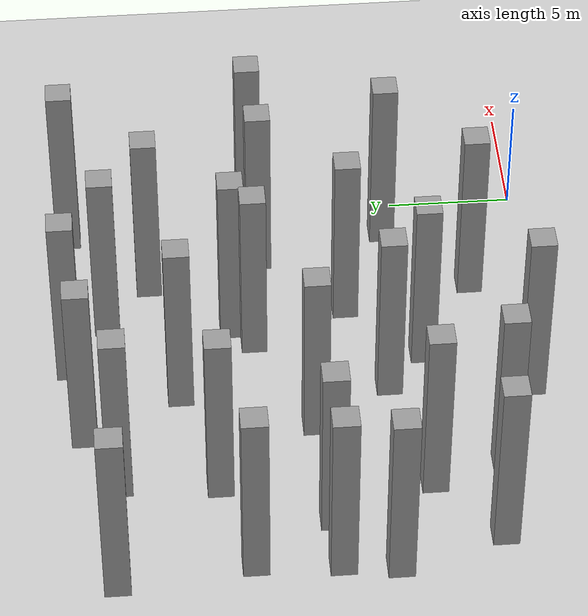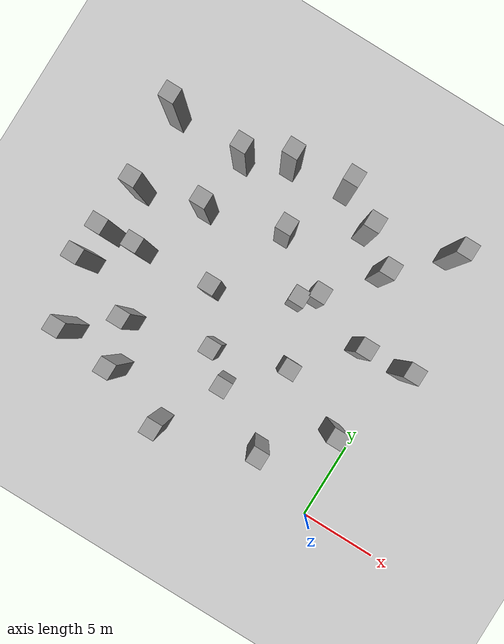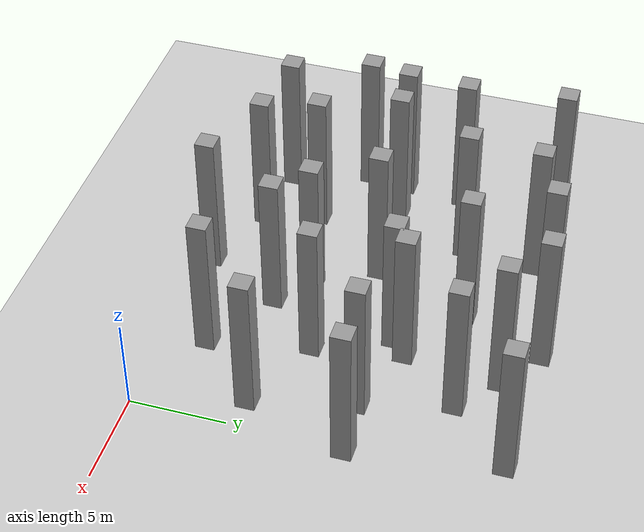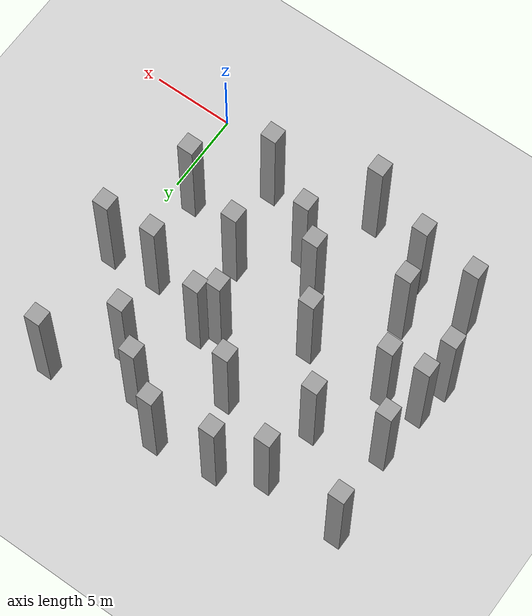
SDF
<sdf version="1.7">
 <world name="default">
  <model name="ground_plane">
   <static>1</static>
   <link name="link">
    <collision name="collision">
     <geometry><plane><normal>0 0 1</normal><size>100 100</size></plane></geometry>
     <surface>
      <contact><collide_bitmask>65535</collide_bitmask></contact>
      <friction><ode><mu>100</mu><mu2>50</mu2></ode></friction>
     </surface>
    </collision>
    <visual name="visual">
     <cast_shadows>0</cast_shadows>
     <geometry><plane><normal>0 0 1</normal><size>100 100</size></plane></geometry>
     <material>
      <script><uri>file://media/materials/scripts/gazebo.material</uri><name>Gazebo/Grey</name></script>
     </material>
    </visual>
   </link>
  </model>
  <model name="unit_box_static20">
   <link name="link">
    <inertial>
     <mass>1</mass>
     <inertia>
      <ixx>0.166667</ixx>
      <ixy>0</ixy>
      <ixz>0</ixz>
      <iyy>0.166667</iyy>
      <iyz>0</iyz>
      <izz>0.166667</izz>
     </inertia>
    </inertial>
    <visual name="visual">
     <geometry><box><size>1 1 8</size></box></geometry>
     <material>
      <script><name>Gazebo/Grey</name><uri>file://media/materials/scripts/gazebo.material</uri></script>
      <shader type="pixel"/>
     </material>
    </visual>
    <collision name="collision">
     <geometry><box><size>1 1 8</size></box></geometry>
     <surface>
      <friction>
       <ode><mu>1</mu><mu2>1</mu2><fdir1>0 0 0</fdir1><slip1>0</slip1><slip2>0</slip2></ode>
       <torsional>
        <coefficient>1</coefficient>
        <patch_radius>0</patch_radius>
        <surface_radius>0</surface_radius>
        <use_patch_radius>1</use_patch_radius>
        <ode><slip>0</slip></ode>
       </torsional>
      </friction>
      <bounce><restitution_coefficient>0</restitution_coefficient><threshold>1e+06</threshold></bounce>
      <contact>
       <collide_without_contact>0</collide_without_contact>
       <collide_without_contact_bitmask>1</collide_without_contact_bitmask>
       <collide_bitmask>1</collide_bitmask>
       <ode>
        <soft_cfm>0</soft_cfm>
        <soft_erp>0.2</soft_erp>
        <kp>1e+13</kp>
        <kd>1</kd>
        <max_vel>0.01</max_vel>
        <min_depth>0</min_depth>
       </ode>
       <bullet>
        <split_impulse>1</split_impulse>
        <split_impulse_penetration_threshold>-0.01</split_impulse_penetration_threshold>
        <soft_cfm>0</soft_cfm>
        <soft_erp>0.2</soft_erp>
        <kp>1e+13</kp>
        <kd>1</kd>
       </bullet>
      </contact>
     </surface>
    </collision>
   </link>
   <static>1</static>
   <pose>-4.92886 2.28168 4 0 -0 0</pose>
  </model>
  <model name="unit_box_static24">
   <link name="link">
    <inertial>
     <mass>1</mass>
     <inertia>
      <ixx>0.166667</ixx>
      <ixy>0</ixy>
      <ixz>0</ixz>
      <iyy>0.166667</iyy>
      <iyz>0</iyz>
      <izz>0.166667</izz>
     </inertia>
    </inertial>
    <visual name="visual">
     <geometry><box><size>1 1 8</size></box></geometry>
     <material>
      <script><name>Gazebo/Grey</name><uri>file://media/materials/scripts/gazebo.material</uri></script>
      <shader type="pixel"/>
     </material>
    </visual>
    <collision name="collision">
     <geometry><box><size>1 1 8</size></box></geometry>
     <surface>
      <friction>
       <ode><mu>1</mu><mu2>1</mu2><fdir1>0 0 0</fdir1><slip1>0</slip1><slip2>0</slip2></ode>
       <torsional>
        <coefficient>1</coefficient>
        <patch_radius>0</patch_radius>
        <surface_radius>0</surface_radius>
        <use_patch_radius>1</use_patch_radius>
        <ode><slip>0</slip></ode>
       </torsional>
      </friction>
      <bounce><restitution_coefficient>0</restitution_coefficient><threshold>1e+06</threshold></bounce>
      <contact>
       <collide_without_contact>0</collide_without_contact>
       <collide_without_contact_bitmask>1</collide_without_contact_bitmask>
       <collide_bitmask>1</collide_bitmask>
       <ode>
        <soft_cfm>0</soft_cfm>
        <soft_erp>0.2</soft_erp>
        <kp>1e+13</kp>
        <kd>1</kd>
        <max_vel>0.01</max_vel>
        <min_depth>0</min_depth>
       </ode>
       <bullet>
        <split_impulse>1</split_impulse>
        <split_impulse_penetration_threshold>-0.01</split_impulse_penetration_threshold>
        <soft_cfm>0</soft_cfm>
        <soft_erp>0.2</soft_erp>
        <kp>1e+13</kp>
        <kd>1</kd>
       </bullet>
      </contact>
     </surface>
    </collision>
   </link>
   <static>1</static>
   <pose>-14.8699 2.03587 4 0 -0 0</pose>
  </model>
  <model name="unit_box_static33">
   <link name="link">
    <inertial>
     <mass>1</mass>
     <inertia>
      <ixx>0.166667</ixx>
      <ixy>0</ixy>
      <ixz>0</ixz>
      <iyy>0.166667</iyy>
      <iyz>0</iyz>
      <izz>0.166667</izz>
     </inertia>
    </inertial>
    <visual name="visual">
     <geometry><box><size>1 1 8</size></box></geometry>
     <material>
      <script><name>Gazebo/Grey</name><uri>file://media/materials/scripts/gazebo.material</uri></script>
      <shader type="pixel"/>
     </material>
    </visual>
    <collision name="collision">
     <geometry><box><size>1 1 8</size></box></geometry>
     <surface>
      <friction>
       <ode><mu>1</mu><mu2>1</mu2><fdir1>0 0 0</fdir1><slip1>0</slip1><slip2>0</slip2></ode>
       <torsional>
        <coefficient>1</coefficient>
        <patch_radius>0</patch_radius>
        <surface_radius>0</surface_radius>
        <use_patch_radius>1</use_patch_radius>
        <ode><slip>0</slip></ode>
       </torsional>
      </friction>
      <bounce><restitution_coefficient>0</restitution_coefficient><threshold>1e+06</threshold></bounce>
      <contact>
       <collide_without_contact>0</collide_without_contact>
       <collide_without_contact_bitmask>1</collide_without_contact_bitmask>
       <collide_bitmask>1</collide_bitmask>
       <ode>
        <soft_cfm>0</soft_cfm>
        <soft_erp>0.2</soft_erp>
        <kp>1e+13</kp>
        <kd>1</kd>
        <max_vel>0.01</max_vel>
        <min_depth>0</min_depth>
       </ode>
       <bullet>
        <split_impulse>1</split_impulse>
        <split_impulse_penetration_threshold>-0.01</split_impulse_penetration_threshold>
        <soft_cfm>0</soft_cfm>
        <soft_erp>0.2</soft_erp>
        <kp>1e+13</kp>
        <kd>1</kd>
       </bullet>
      </contact>
     </surface>
    </collision>
   </link>
   <static>1</static>
   <pose>-6.26787 17.038 4 0 -0 0</pose>
  </model>
  <model name="unit_box_static40">
   <link name="link">
    <inertial>
     <mass>1</mass>
     <inertia>
      <ixx>0.166667</ixx>
      <ixy>0</ixy>
      <ixz>0</ixz>
      <iyy>0.166667</iyy>
      <iyz>0</iyz>
      <izz>0.166667</izz>
     </inertia>
    </inertial>
    <visual name="visual">
     <geometry><box><size>1 1 8</size></box></geometry>
     <material>
      <script><name>Gazebo/Grey</name><uri>file://media/materials/scripts/gazebo.material</uri></script>
      <shader type="pixel"/>
     </material>
    </visual>
    <collision name="collision">
     <geometry><box><size>1 1 8</size></box></geometry>
     <surface>
      <friction>
       <ode><mu>1</mu><mu2>1</mu2><fdir1>0 0 0</fdir1><slip1>0</slip1><slip2>0</slip2></ode>
       <torsional>
        <coefficient>1</coefficient>
        <patch_radius>0</patch_radius>
        <surface_radius>0</surface_radius>
        <use_patch_radius>1</use_patch_radius>
        <ode><slip>0</slip></ode>
       </torsional>
      </friction>
      <bounce><restitution_coefficient>0</restitution_coefficient><threshold>1e+06</threshold></bounce>
      <contact>
       <collide_without_contact>0</collide_without_contact>
       <collide_without_contact_bitmask>1</collide_without_contact_bitmask>
       <collide_bitmask>1</collide_bitmask>
       <ode>
        <soft_cfm>0</soft_cfm>
        <soft_erp>0.2</soft_erp>
        <kp>1e+13</kp>
        <kd>1</kd>
        <max_vel>0.01</max_vel>
        <min_depth>0</min_depth>
       </ode>
       <bullet>
        <split_impulse>1</split_impulse>
        <split_impulse_penetration_threshold>-0.01</split_impulse_penetration_threshold>
        <soft_cfm>0</soft_cfm>
        <soft_erp>0.2</soft_erp>
        <kp>1e+13</kp>
        <kd>1</kd>
       </bullet>
      </contact>
     </surface>
    </collision>
   </link>
   <static>1</static>
   <pose>-12.3332 18.1183 4 0 -0 0</pose>
  </model>
  <model name="unit_box_static48">
   <link name="link">
    <inertial>
     <mass>1</mass>
     <inertia>
      <ixx>0.166667</ixx>
      <ixy>0</ixy>
      <ixz>0</ixz>
      <iyy>0.166667</iyy>
      <iyz>0</iyz>
      <izz>0.166667</izz>
     </inertia>
    </inertial>
    <visual name="visual">
     <geometry><box><size>1 1 8</size></box></geometry>
     <material>
      <script><name>Gazebo/Grey</name><uri>file://media/materials/scripts/gazebo.material</uri></script>
      <shader type="pixel"/>
     </material>
    </visual>
    <collision name="collision">
     <geometry><box><size>1 1 8</size></box></geometry>
     <surface>
      <friction>
       <ode><mu>1</mu><mu2>1</mu2><fdir1>0 0 0</fdir1><slip1>0</slip1><slip2>0</slip2></ode>
       <torsional>
        <coefficient>1</coefficient>
        <patch_radius>0</patch_radius>
        <surface_radius>0</surface_radius>
        <use_patch_radius>1</use_patch_radius>
        <ode><slip>0</slip></ode>
       </torsional>
      </friction>
      <bounce><restitution_coefficient>0</restitution_coefficient><threshold>1e+06</threshold></bounce>
      <contact>
       <collide_without_contact>0</collide_without_contact>
       <collide_without_contact_bitmask>1</collide_without_contact_bitmask>
       <collide_bitmask>1</collide_bitmask>
       <ode>
        <soft_cfm>0</soft_cfm>
        <soft_erp>0.2</soft_erp>
        <kp>1e+13</kp>
        <kd>1</kd>
        <max_vel>0.01</max_vel>
        <min_depth>0</min_depth>
       </ode>
       <bullet>
        <split_impulse>1</split_impulse>
        <split_impulse_penetration_threshold>-0.01</split_impulse_penetration_threshold>
        <soft_cfm>0</soft_cfm>
        <soft_erp>0.2</soft_erp>
        <kp>1e+13</kp>
        <kd>1</kd>
       </bullet>
      </contact>
     </surface>
    </collision>
   </link>
   <static>1</static>
   <pose>-1.04876 18.4813 4 0 -0 0</pose>
  </model>
  <model name="unit_box_static66">
   <link name="link">
    <inertial>
     <mass>1</mass>
     <inertia>
      <ixx>0.166667</ixx>
      <ixy>0</ixy>
      <ixz>0</ixz>
      <iyy>0.166667</iyy>
      <iyz>0</iyz>
      <izz>0.166667</izz>
     </inertia>
    </inertial>
    <visual name="visual">
     <geometry><box><size>1 1 8</size></box></geometry>
     <material>
      <script><name>Gazebo/Grey</name><uri>file://media/materials/scripts/gazebo.material</uri></script>
      <shader type="pixel"/>
     </material>
    </visual>
    <collision name="collision">
     <geometry><box><size>1 1 8</size></box></geometry>
     <surface>
      <friction>
       <ode><mu>1</mu><mu2>1</mu2><fdir1>0 0 0</fdir1><slip1>0</slip1><slip2>0</slip2></ode>
       <torsional>
        <coefficient>1</coefficient>
        <patch_radius>0</patch_radius>
        <surface_radius>0</surface_radius>
        <use_patch_radius>1</use_patch_radius>
        <ode><slip>0</slip></ode>
       </torsional>
      </friction>
      <bounce><restitution_coefficient>0</restitution_coefficient><threshold>1e+06</threshold></bounce>
      <contact>
       <collide_without_contact>0</collide_without_contact>
       <collide_without_contact_bitmask>1</collide_without_contact_bitmask>
       <collide_bitmask>1</collide_bitmask>
       <ode>
        <soft_cfm>0</soft_cfm>
        <soft_erp>0.2</soft_erp>
        <kp>1e+13</kp>
        <kd>1</kd>
        <max_vel>0.01</max_vel>
        <min_depth>0</min_depth>
       </ode>
       <bullet>
        <split_impulse>1</split_impulse>
        <split_impulse_penetration_threshold>-0.01</split_impulse_penetration_threshold>
        <soft_cfm>0</soft_cfm>
        <soft_erp>0.2</soft_erp>
        <kp>1e+13</kp>
        <kd>1</kd>
       </bullet>
      </contact>
     </surface>
    </collision>
   </link>
   <static>1</static>
   <pose>-15.7173 4.8814 4 0 -0 0</pose>
  </model>
  <model name="unit_box_static68">
   <link name="link">
    <inertial>
     <mass>1</mass>
     <inertia>
      <ixx>0.166667</ixx>
      <ixy>0</ixy>
      <ixz>0</ixz>
      <iyy>0.166667</iyy>
      <iyz>0</iyz>
      <izz>0.166667</izz>
     </inertia>
    </inertial>
    <visual name="visual">
     <geometry><box><size>1 1 8</size></box></geometry>
     <material>
      <script><name>Gazebo/Grey</name><uri>file://media/materials/scripts/gazebo.material</uri></script>
      <shader type="pixel"/>
     </material>
    </visual>
    <collision name="collision">
     <geometry><box><size>1 1 8</size></box></geometry>
     <surface>
      <friction>
       <ode><mu>1</mu><mu2>1</mu2><fdir1>0 0 0</fdir1><slip1>0</slip1><slip2>0</slip2></ode>
       <torsional>
        <coefficient>1</coefficient>
        <patch_radius>0</patch_radius>
        <surface_radius>0</surface_radius>
        <use_patch_radius>1</use_patch_radius>
        <ode><slip>0</slip></ode>
       </torsional>
      </friction>
      <bounce><restitution_coefficient>0</restitution_coefficient><threshold>1e+06</threshold></bounce>
      <contact>
       <collide_without_contact>0</collide_without_contact>
       <collide_without_contact_bitmask>1</collide_without_contact_bitmask>
       <collide_bitmask>1</collide_bitmask>
       <ode>
        <soft_cfm>0</soft_cfm>
        <soft_erp>0.2</soft_erp>
        <kp>1e+13</kp>
        <kd>1</kd>
        <max_vel>0.01</max_vel>
        <min_depth>0</min_depth>
       </ode>
       <bullet>
        <split_impulse>1</split_impulse>
        <split_impulse_penetration_threshold>-0.01</split_impulse_penetration_threshold>
        <soft_cfm>0</soft_cfm>
        <soft_erp>0.2</soft_erp>
        <kp>1e+13</kp>
        <kd>1</kd>
       </bullet>
      </contact>
     </surface>
    </collision>
   </link>
   <static>1</static>
   <pose>-8.76914 4.5745 4 0 -0 0</pose>
  </model>
  <model name="unit_box_static69">
   <link name="link">
    <inertial>
     <mass>1</mass>
     <inertia>
      <ixx>0.166667</ixx>
      <ixy>0</ixy>
      <ixz>0</ixz>
      <iyy>0.166667</iyy>
      <iyz>0</iyz>
      <izz>0.166667</izz>
     </inertia>
    </inertial>
    <visual name="visual">
     <geometry><box><size>1 1 8</size></box></geometry>
     <material>
      <script><name>Gazebo/Grey</name><uri>file://media/materials/scripts/gazebo.material</uri></script>
      <shader type="pixel"/>
     </material>
    </visual>
    <collision name="collision">
     <geometry><box><size>1 1 8</size></box></geometry>
     <surface>
      <friction>
       <ode><mu>1</mu><mu2>1</mu2><fdir1>0 0 0</fdir1><slip1>0</slip1><slip2>0</slip2></ode>
       <torsional>
        <coefficient>1</coefficient>
        <patch_radius>0</patch_radius>
        <surface_radius>0</surface_radius>
        <use_patch_radius>1</use_patch_radius>
        <ode><slip>0</slip></ode>
       </torsional>
      </friction>
      <bounce><restitution_coefficient>0</restitution_coefficient><threshold>1e+06</threshold></bounce>
      <contact>
       <collide_without_contact>0</collide_without_contact>
       <collide_without_contact_bitmask>1</collide_without_contact_bitmask>
       <collide_bitmask>1</collide_bitmask>
       <ode>
        <soft_cfm>0</soft_cfm>
        <soft_erp>0.2</soft_erp>
        <kp>1e+13</kp>
        <kd>1</kd>
        <max_vel>0.01</max_vel>
        <min_depth>0</min_depth>
       </ode>
       <bullet>
        <split_impulse>1</split_impulse>
        <split_impulse_penetration_threshold>-0.01</split_impulse_penetration_threshold>
        <soft_cfm>0</soft_cfm>
        <soft_erp>0.2</soft_erp>
        <kp>1e+13</kp>
        <kd>1</kd>
       </bullet>
      </contact>
     </surface>
    </collision>
   </link>
   <static>1</static>
   <pose>-10.4438 6.09552 4 0 -0 0</pose>
  </model>
  <model name="unit_box_static72">
   <link name="link">
    <inertial>
     <mass>1</mass>
     <inertia>
      <ixx>0.166667</ixx>
      <ixy>0</ixy>
      <ixz>0</ixz>
      <iyy>0.166667</iyy>
      <iyz>0</iyz>
      <izz>0.166667</izz>
     </inertia>
    </inertial>
    <visual name="visual">
     <geometry><box><size>1 1 8</size></box></geometry>
     <material>
      <script><name>Gazebo/Grey</name><uri>file://media/materials/scripts/gazebo.material</uri></script>
      <shader type="pixel"/>
     </material>
    </visual>
    <collision name="collision">
     <geometry><box><size>1 1 8</size></box></geometry>
     <surface>
      <friction>
       <ode><mu>1</mu><mu2>1</mu2><fdir1>0 0 0</fdir1><slip1>0</slip1><slip2>0</slip2></ode>
       <torsional>
        <coefficient>1</coefficient>
        <patch_radius>0</patch_radius>
        <surface_radius>0</surface_radius>
        <use_patch_radius>1</use_patch_radius>
        <ode><slip>0</slip></ode>
       </torsional>
      </friction>
      <bounce><restitution_coefficient>0</restitution_coefficient><threshold>1e+06</threshold></bounce>
      <contact>
       <collide_without_contact>0</collide_without_contact>
       <collide_without_contact_bitmask>1</collide_without_contact_bitmask>
       <collide_bitmask>1</collide_bitmask>
       <ode>
        <soft_cfm>0</soft_cfm>
        <soft_erp>0.2</soft_erp>
        <kp>1e+13</kp>
        <kd>1</kd>
        <max_vel>0.01</max_vel>
        <min_depth>0</min_depth>
       </ode>
       <bullet>
        <split_impulse>1</split_impulse>
        <split_impulse_penetration_threshold>-0.01</split_impulse_penetration_threshold>
        <soft_cfm>0</soft_cfm>
        <soft_erp>0.2</soft_erp>
        <kp>1e+13</kp>
        <kd>1</kd>
       </bullet>
      </contact>
     </surface>
    </collision>
   </link>
   <static>1</static>
   <pose>-19.5525 8.72883 4 0 -0 0</pose>
  </model>
  <model name="unit_box_static86">
   <link name="link">
    <inertial>
     <mass>1</mass>
     <inertia>
      <ixx>0.166667</ixx>
      <ixy>0</ixy>
      <ixz>0</ixz>
      <iyy>0.166667</iyy>
      <iyz>0</iyz>
      <izz>0.166667</izz>
     </inertia>
    </inertial>
    <visual name="visual">
     <geometry><box><size>1 1 8</size></box></geometry>
     <material>
      <script><name>Gazebo/Grey</name><uri>file://media/materials/scripts/gazebo.material</uri></script>
      <shader type="pixel"/>
     </material>
    </visual>
    <collision name="collision">
     <geometry><box><size>1 1 8</size></box></geometry>
     <surface>
      <friction>
       <ode><mu>1</mu><mu2>1</mu2><fdir1>0 0 0</fdir1><slip1>0</slip1><slip2>0</slip2></ode>
       <torsional>
        <coefficient>1</coefficient>
        <patch_radius>0</patch_radius>
        <surface_radius>0</surface_radius>
        <use_patch_radius>1</use_patch_radius>
        <ode><slip>0</slip></ode>
       </torsional>
      </friction>
      <bounce><restitution_coefficient>0</restitution_coefficient><threshold>1e+06</threshold></bounce>
      <contact>
       <collide_without_contact>0</collide_without_contact>
       <collide_without_contact_bitmask>1</collide_without_contact_bitmask>
       <collide_bitmask>1</collide_bitmask>
       <ode>
        <soft_cfm>0</soft_cfm>
        <soft_erp>0.2</soft_erp>
        <kp>1e+13</kp>
        <kd>1</kd>
        <max_vel>0.01</max_vel>
        <min_depth>0</min_depth>
       </ode>
       <bullet>
        <split_impulse>1</split_impulse>
        <split_impulse_penetration_threshold>-0.01</split_impulse_penetration_threshold>
        <soft_cfm>0</soft_cfm>
        <soft_erp>0.2</soft_erp>
        <kp>1e+13</kp>
        <kd>1</kd>
       </bullet>
      </contact>
     </surface>
    </collision>
   </link>
   <static>1</static>
   <pose>-5.98534 7.44605 4 0 -0 0</pose>
  </model>
  <model name="unit_box_static100">
   <link name="link">
    <inertial>
     <mass>1</mass>
     <inertia>
      <ixx>0.166667</ixx>
      <ixy>0</ixy>
      <ixz>0</ixz>
      <iyy>0.166667</iyy>
      <iyz>0</iyz>
      <izz>0.166667</izz>
     </inertia>
    </inertial>
    <visual name="visual">
     <geometry><box><size>1 1 8</size></box></geometry>
     <material>
      <script><name>Gazebo/Grey</name><uri>file://media/materials/scripts/gazebo.material</uri></script>
      <shader type="pixel"/>
     </material>
    </visual>
    <collision name="collision">
     <geometry><box><size>1 1 8</size></box></geometry>
     <surface>
      <friction>
       <ode><mu>1</mu><mu2>1</mu2><fdir1>0 0 0</fdir1><slip1>0</slip1><slip2>0</slip2></ode>
       <torsional>
        <coefficient>1</coefficient>
        <patch_radius>0</patch_radius>
        <surface_radius>0</surface_radius>
        <use_patch_radius>1</use_patch_radius>
        <ode><slip>0</slip></ode>
       </torsional>
      </friction>
      <bounce><restitution_coefficient>0</restitution_coefficient><threshold>1e+06</threshold></bounce>
      <contact>
       <collide_without_contact>0</collide_without_contact>
       <collide_without_contact_bitmask>1</collide_without_contact_bitmask>
       <collide_bitmask>1</collide_bitmask>
       <ode>
        <soft_cfm>0</soft_cfm>
        <soft_erp>0.2</soft_erp>
        <kp>1e+13</kp>
        <kd>1</kd>
        <max_vel>0.01</max_vel>
        <min_depth>0</min_depth>
       </ode>
       <bullet>
        <split_impulse>1</split_impulse>
        <split_impulse_penetration_threshold>-0.01</split_impulse_penetration_threshold>
        <soft_cfm>0</soft_cfm>
        <soft_erp>0.2</soft_erp>
        <kp>1e+13</kp>
        <kd>1</kd>
       </bullet>
      </contact>
     </surface>
    </collision>
   </link>
   <static>1</static>
   <pose>-6.78153 12.0356 4 0 -0 0</pose>
  </model>
  <model name="unit_box_static111">
   <link name="link">
    <inertial>
     <mass>1</mass>
     <inertia>
      <ixx>0.166667</ixx>
      <ixy>0</ixy>
      <ixz>0</ixz>
      <iyy>0.166667</iyy>
      <iyz>0</iyz>
      <izz>0.166667</izz>
     </inertia>
    </inertial>
    <visual name="visual">
     <geometry><box><size>1 1 8</size></box></geometry>
     <material>
      <script><name>Gazebo/Grey</name><uri>file://media/materials/scripts/gazebo.material</uri></script>
      <shader type="pixel"/>
     </material>
    </visual>
    <collision name="collision">
     <geometry><box><size>1 1 8</size></box></geometry>
     <surface>
      <friction>
       <ode><mu>1</mu><mu2>1</mu2><fdir1>0 0 0</fdir1><slip1>0</slip1><slip2>0</slip2></ode>
       <torsional>
        <coefficient>1</coefficient>
        <patch_radius>0</patch_radius>
        <surface_radius>0</surface_radius>
        <use_patch_radius>1</use_patch_radius>
        <ode><slip>0</slip></ode>
       </torsional>
      </friction>
      <bounce><restitution_coefficient>0</restitution_coefficient><threshold>1e+06</threshold></bounce>
      <contact>
       <collide_without_contact>0</collide_without_contact>
       <collide_without_contact_bitmask>1</collide_without_contact_bitmask>
       <collide_bitmask>1</collide_bitmask>
       <ode>
        <soft_cfm>0</soft_cfm>
        <soft_erp>0.2</soft_erp>
        <kp>1e+13</kp>
        <kd>1</kd>
        <max_vel>0.01</max_vel>
        <min_depth>0</min_depth>
       </ode>
       <bullet>
        <split_impulse>1</split_impulse>
        <split_impulse_penetration_threshold>-0.01</split_impulse_penetration_threshold>
        <soft_cfm>0</soft_cfm>
        <soft_erp>0.2</soft_erp>
        <kp>1e+13</kp>
        <kd>1</kd>
       </bullet>
      </contact>
     </surface>
    </collision>
   </link>
   <static>1</static>
   <pose>-10.8895 0.495494 4 0 -0 0</pose>
  </model>
  <model name="unit_box_static119">
   <link name="link">
    <inertial>
     <mass>1</mass>
     <inertia>
      <ixx>0.166667</ixx>
      <ixy>0</ixy>
      <ixz>0</ixz>
      <iyy>0.166667</iyy>
      <iyz>0</iyz>
      <izz>0.166667</izz>
     </inertia>
    </inertial>
    <visual name="visual">
     <geometry><box><size>1 1 8</size></box></geometry>
     <material>
      <script><name>Gazebo/Grey</name><uri>file://media/materials/scripts/gazebo.material</uri></script>
      <shader type="pixel"/>
     </material>
    </visual>
    <collision name="collision">
     <geometry><box><size>1 1 8</size></box></geometry>
     <surface>
      <friction>
       <ode><mu>1</mu><mu2>1</mu2><fdir1>0 0 0</fdir1><slip1>0</slip1><slip2>0</slip2></ode>
       <torsional>
        <coefficient>1</coefficient>
        <patch_radius>0</patch_radius>
        <surface_radius>0</surface_radius>
        <use_patch_radius>1</use_patch_radius>
        <ode><slip>0</slip></ode>
       </torsional>
      </friction>
      <bounce><restitution_coefficient>0</restitution_coefficient><threshold>1e+06</threshold></bounce>
      <contact>
       <collide_without_contact>0</collide_without_contact>
       <collide_without_contact_bitmask>1</collide_without_contact_bitmask>
       <collide_bitmask>1</collide_bitmask>
       <ode>
        <soft_cfm>0</soft_cfm>
        <soft_erp>0.2</soft_erp>
        <kp>1e+13</kp>
        <kd>1</kd>
        <max_vel>0.01</max_vel>
        <min_depth>0</min_depth>
       </ode>
       <bullet>
        <split_impulse>1</split_impulse>
        <split_impulse_penetration_threshold>-0.01</split_impulse_penetration_threshold>
        <soft_cfm>0</soft_cfm>
        <soft_erp>0.2</soft_erp>
        <kp>1e+13</kp>
        <kd>1</kd>
       </bullet>
      </contact>
     </surface>
    </collision>
   </link>
   <static>1</static>
   <pose>-4.14021 15.2702 4 0 -0 0</pose>
  </model>
  <model name="unit_box_static120">
   <link name="link">
    <inertial>
     <mass>1</mass>
     <inertia>
      <ixx>0.166667</ixx>
      <ixy>0</ixy>
      <ixz>0</ixz>
      <iyy>0.166667</iyy>
      <iyz>0</iyz>
      <izz>0.166667</izz>
     </inertia>
    </inertial>
    <visual name="visual">
     <geometry><box><size>1 1 8</size></box></geometry>
     <material>
      <script><name>Gazebo/Grey</name><uri>file://media/materials/scripts/gazebo.material</uri></script>
      <shader type="pixel"/>
     </material>
    </visual>
    <collision name="collision">
     <geometry><box><size>1 1 8</size></box></geometry>
     <surface>
      <friction>
       <ode><mu>1</mu><mu2>1</mu2><fdir1>0 0 0</fdir1><slip1>0</slip1><slip2>0</slip2></ode>
       <torsional>
        <coefficient>1</coefficient>
        <patch_radius>0</patch_radius>
        <surface_radius>0</surface_radius>
        <use_patch_radius>1</use_patch_radius>
        <ode><slip>0</slip></ode>
       </torsional>
      </friction>
      <bounce><restitution_coefficient>0</restitution_coefficient><threshold>1e+06</threshold></bounce>
      <contact>
       <collide_without_contact>0</collide_without_contact>
       <collide_without_contact_bitmask>1</collide_without_contact_bitmask>
       <collide_bitmask>1</collide_bitmask>
       <ode>
        <soft_cfm>0</soft_cfm>
        <soft_erp>0.2</soft_erp>
        <kp>1e+13</kp>
        <kd>1</kd>
        <max_vel>0.01</max_vel>
        <min_depth>0</min_depth>
       </ode>
       <bullet>
        <split_impulse>1</split_impulse>
        <split_impulse_penetration_threshold>-0.01</split_impulse_penetration_threshold>
        <soft_cfm>0</soft_cfm>
        <soft_erp>0.2</soft_erp>
        <kp>1e+13</kp>
        <kd>1</kd>
       </bullet>
      </contact>
     </surface>
    </collision>
   </link>
   <static>1</static>
   <pose>-10.4158 14.2993 4 0 -0 0</pose>
  </model>
  <model name="unit_box_static131">
   <link name="link">
    <inertial>
     <mass>1</mass>
     <inertia>
      <ixx>0.166667</ixx>
      <ixy>0</ixy>
      <ixz>0</ixz>
      <iyy>0.166667</iyy>
      <iyz>0</iyz>
      <izz>0.166667</izz>
     </inertia>
    </inertial>
    <visual name="visual">
     <geometry><box><size>1 1 8</size></box></geometry>
     <material>
      <script><name>Gazebo/Grey</name><uri>file://media/materials/scripts/gazebo.material</uri></script>
      <shader type="pixel"/>
     </material>
    </visual>
    <collision name="collision">
     <geometry><box><size>1 1 8</size></box></geometry>
     <surface>
      <friction>
       <ode><mu>1</mu><mu2>1</mu2><fdir1>0 0 0</fdir1><slip1>0</slip1><slip2>0</slip2></ode>
       <torsional>
        <coefficient>1</coefficient>
        <patch_radius>0</patch_radius>
        <surface_radius>0</surface_radius>
        <use_patch_radius>1</use_patch_radius>
        <ode><slip>0</slip></ode>
       </torsional>
      </friction>
      <bounce><restitution_coefficient>0</restitution_coefficient><threshold>1e+06</threshold></bounce>
      <contact>
       <collide_without_contact>0</collide_without_contact>
       <collide_without_contact_bitmask>1</collide_without_contact_bitmask>
       <collide_bitmask>1</collide_bitmask>
       <ode>
        <soft_cfm>0</soft_cfm>
        <soft_erp>0.2</soft_erp>
        <kp>1e+13</kp>
        <kd>1</kd>
        <max_vel>0.01</max_vel>
        <min_depth>0</min_depth>
       </ode>
       <bullet>
        <split_impulse>1</split_impulse>
        <split_impulse_penetration_threshold>-0.01</split_impulse_penetration_threshold>
        <soft_cfm>0</soft_cfm>
        <soft_erp>0.2</soft_erp>
        <kp>1e+13</kp>
        <kd>1</kd>
       </bullet>
      </contact>
     </surface>
    </collision>
   </link>
   <static>1</static>
   <pose>-19.8199 6.60231 4 0 -0 0</pose>
  </model>
  <model name="unit_box_static144">
   <link name="link">
    <inertial>
     <mass>1</mass>
     <inertia>
      <ixx>0.166667</ixx>
      <ixy>0</ixy>
      <ixz>0</ixz>
      <iyy>0.166667</iyy>
      <iyz>0</iyz>
      <izz>0.166667</izz>
     </inertia>
    </inertial>
    <visual name="visual">
     <geometry><box><size>1 1 8</size></box></geometry>
     <material>
      <script><name>Gazebo/Grey</name><uri>file://media/materials/scripts/gazebo.material</uri></script>
      <shader type="pixel"/>
     </material>
    </visual>
    <collision name="collision">
     <geometry><box><size>1 1 8</size></box></geometry>
     <surface>
      <friction>
       <ode><mu>1</mu><mu2>1</mu2><fdir1>0 0 0</fdir1><slip1>0</slip1><slip2>0</slip2></ode>
       <torsional>
        <coefficient>1</coefficient>
        <patch_radius>0</patch_radius>
        <surface_radius>0</surface_radius>
        <use_patch_radius>1</use_patch_radius>
        <ode><slip>0</slip></ode>
       </torsional>
      </friction>
      <bounce><restitution_coefficient>0</restitution_coefficient><threshold>1e+06</threshold></bounce>
      <contact>
       <collide_without_contact>0</collide_without_contact>
       <collide_without_contact_bitmask>1</collide_without_contact_bitmask>
       <collide_bitmask>1</collide_bitmask>
       <ode>
        <soft_cfm>0</soft_cfm>
        <soft_erp>0.2</soft_erp>
        <kp>1e+13</kp>
        <kd>1</kd>
        <max_vel>0.01</max_vel>
        <min_depth>0</min_depth>
       </ode>
       <bullet>
        <split_impulse>1</split_impulse>
        <split_impulse_penetration_threshold>-0.01</split_impulse_penetration_threshold>
        <soft_cfm>0</soft_cfm>
        <soft_erp>0.2</soft_erp>
        <kp>1e+13</kp>
        <kd>1</kd>
       </bullet>
      </contact>
     </surface>
    </collision>
   </link>
   <static>1</static>
   <pose>-7.67483 11.2344 4 0 -0 0</pose>
  </model>
  <model name="unit_box_static145">
   <link name="link">
    <inertial>
     <mass>1</mass>
     <inertia>
      <ixx>0.166667</ixx>
      <ixy>0</ixy>
      <ixz>0</ixz>
      <iyy>0.166667</iyy>
      <iyz>0</iyz>
      <izz>0.166667</izz>
     </inertia>
    </inertial>
    <visual name="visual">
     <geometry><box><size>1 1 8</size></box></geometry>
     <material>
      <script><name>Gazebo/Grey</name><uri>file://media/materials/scripts/gazebo.material</uri></script>
      <shader type="pixel"/>
     </material>
    </visual>
    <collision name="collision">
     <geometry><box><size>1 1 8</size></box></geometry>
     <surface>
      <friction>
       <ode><mu>1</mu><mu2>1</mu2><fdir1>0 0 0</fdir1><slip1>0</slip1><slip2>0</slip2></ode>
       <torsional>
        <coefficient>1</coefficient>
        <patch_radius>0</patch_radius>
        <surface_radius>0</surface_radius>
        <use_patch_radius>1</use_patch_radius>
        <ode><slip>0</slip></ode>
       </torsional>
      </friction>
      <bounce><restitution_coefficient>0</restitution_coefficient><threshold>1e+06</threshold></bounce>
      <contact>
       <collide_without_contact>0</collide_without_contact>
       <collide_without_contact_bitmask>1</collide_without_contact_bitmask>
       <collide_bitmask>1</collide_bitmask>
       <ode>
        <soft_cfm>0</soft_cfm>
        <soft_erp>0.2</soft_erp>
        <kp>1e+13</kp>
        <kd>1</kd>
        <max_vel>0.01</max_vel>
        <min_depth>0</min_depth>
       </ode>
       <bullet>
        <split_impulse>1</split_impulse>
        <split_impulse_penetration_threshold>-0.01</split_impulse_penetration_threshold>
        <soft_cfm>0</soft_cfm>
        <soft_erp>0.2</soft_erp>
        <kp>1e+13</kp>
        <kd>1</kd>
       </bullet>
      </contact>
     </surface>
    </collision>
   </link>
   <static>1</static>
   <pose>-1.62188 5.54173 4 0 -0 0</pose>
  </model>
  <model name="unit_box_static162">
   <link name="link">
    <inertial>
     <mass>1</mass>
     <inertia>
      <ixx>0.166667</ixx>
      <ixy>0</ixy>
      <ixz>0</ixz>
      <iyy>0.166667</iyy>
      <iyz>0</iyz>
      <izz>0.166667</izz>
     </inertia>
    </inertial>
    <visual name="visual">
     <geometry><box><size>1 1 8</size></box></geometry>
     <material>
      <script><name>Gazebo/Grey</name><uri>file://media/materials/scripts/gazebo.material</uri></script>
      <shader type="pixel"/>
     </material>
    </visual>
    <collision name="collision">
     <geometry><box><size>1 1 8</size></box></geometry>
     <surface>
      <friction>
       <ode><mu>1</mu><mu2>1</mu2><fdir1>0 0 0</fdir1><slip1>0</slip1><slip2>0</slip2></ode>
       <torsional>
        <coefficient>1</coefficient>
        <patch_radius>0</patch_radius>
        <surface_radius>0</surface_radius>
        <use_patch_radius>1</use_patch_radius>
        <ode><slip>0</slip></ode>
       </torsional>
      </friction>
      <bounce><restitution_coefficient>0</restitution_coefficient><threshold>1e+06</threshold></bounce>
      <contact>
       <collide_without_contact>0</collide_without_contact>
       <collide_without_contact_bitmask>1</collide_without_contact_bitmask>
       <collide_bitmask>1</collide_bitmask>
       <ode>
        <soft_cfm>0</soft_cfm>
        <soft_erp>0.2</soft_erp>
        <kp>1e+13</kp>
        <kd>1</kd>
        <max_vel>0.01</max_vel>
        <min_depth>0</min_depth>
       </ode>
       <bullet>
        <split_impulse>1</split_impulse>
        <split_impulse_penetration_threshold>-0.01</split_impulse_penetration_threshold>
        <soft_cfm>0</soft_cfm>
        <soft_erp>0.2</soft_erp>
        <kp>1e+13</kp>
        <kd>1</kd>
       </bullet>
      </contact>
     </surface>
    </collision>
   </link>
   <static>1</static>
   <pose>-8.62076 18.6076 4 0 -0 0</pose>
  </model>
  <model name="unit_box_static163">
   <link name="link">
    <inertial>
     <mass>1</mass>
     <inertia>
      <ixx>0.166667</ixx>
      <ixy>0</ixy>
      <ixz>0</ixz>
      <iyy>0.166667</iyy>
      <iyz>0</iyz>
      <izz>0.166667</izz>
     </inertia>
    </inertial>
    <visual name="visual">
     <geometry><box><size>1 1 8</size></box></geometry>
     <material>
      <script><name>Gazebo/Grey</name><uri>file://media/materials/scripts/gazebo.material</uri></script>
      <shader type="pixel"/>
     </material>
    </visual>
    <collision name="collision">
     <geometry><box><size>1 1 8</size></box></geometry>
     <surface>
      <friction>
       <ode><mu>1</mu><mu2>1</mu2><fdir1>0 0 0</fdir1><slip1>0</slip1><slip2>0</slip2></ode>
       <torsional>
        <coefficient>1</coefficient>
        <patch_radius>0</patch_radius>
        <surface_radius>0</surface_radius>
        <use_patch_radius>1</use_patch_radius>
        <ode><slip>0</slip></ode>
       </torsional>
      </friction>
      <bounce><restitution_coefficient>0</restitution_coefficient><threshold>1e+06</threshold></bounce>
      <contact>
       <collide_without_contact>0</collide_without_contact>
       <collide_without_contact_bitmask>1</collide_without_contact_bitmask>
       <collide_bitmask>1</collide_bitmask>
       <ode>
        <soft_cfm>0</soft_cfm>
        <soft_erp>0.2</soft_erp>
        <kp>1e+13</kp>
        <kd>1</kd>
        <max_vel>0.01</max_vel>
        <min_depth>0</min_depth>
       </ode>
       <bullet>
        <split_impulse>1</split_impulse>
        <split_impulse_penetration_threshold>-0.01</split_impulse_penetration_threshold>
        <soft_cfm>0</soft_cfm>
        <soft_erp>0.2</soft_erp>
        <kp>1e+13</kp>
        <kd>1</kd>
       </bullet>
      </contact>
     </surface>
    </collision>
   </link>
   <static>1</static>
   <pose>-2.89187 10.7254 4 0 -0 0</pose>
  </model>
  <model name="unit_box_static165">
   <link name="link">
    <inertial>
     <mass>1</mass>
     <inertia>
      <ixx>0.166667</ixx>
      <ixy>0</ixy>
      <ixz>0</ixz>
      <iyy>0.166667</iyy>
      <iyz>0</iyz>
      <izz>0.166667</izz>
     </inertia>
    </inertial>
    <visual name="visual">
     <geometry><box><size>1 1 8</size></box></geometry>
     <material>
      <script><name>Gazebo/Grey</name><uri>file://media/materials/scripts/gazebo.material</uri></script>
      <shader type="pixel"/>
     </material>
    </visual>
    <collision name="collision">
     <geometry><box><size>1 1 8</size></box></geometry>
     <surface>
      <friction>
       <ode><mu>1</mu><mu2>1</mu2><fdir1>0 0 0</fdir1><slip1>0</slip1><slip2>0</slip2></ode>
       <torsional>
        <coefficient>1</coefficient>
        <patch_radius>0</patch_radius>
        <surface_radius>0</surface_radius>
        <use_patch_radius>1</use_patch_radius>
        <ode><slip>0</slip></ode>
       </torsional>
      </friction>
      <bounce><restitution_coefficient>0</restitution_coefficient><threshold>1e+06</threshold></bounce>
      <contact>
       <collide_without_contact>0</collide_without_contact>
       <collide_without_contact_bitmask>1</collide_without_contact_bitmask>
       <collide_bitmask>1</collide_bitmask>
       <ode>
        <soft_cfm>0</soft_cfm>
        <soft_erp>0.2</soft_erp>
        <kp>1e+13</kp>
        <kd>1</kd>
        <max_vel>0.01</max_vel>
        <min_depth>0</min_depth>
       </ode>
       <bullet>
        <split_impulse>1</split_impulse>
        <split_impulse_penetration_threshold>-0.01</split_impulse_penetration_threshold>
        <soft_cfm>0</soft_cfm>
        <soft_erp>0.2</soft_erp>
        <kp>1e+13</kp>
        <kd>1</kd>
       </bullet>
      </contact>
     </surface>
    </collision>
   </link>
   <static>1</static>
   <pose>-15.0026 16.8631 4 0 -0 0</pose>
  </model>
  <model name="unit_box_static168">
   <link name="link">
    <inertial>
     <mass>1</mass>
     <inertia>
      <ixx>0.166667</ixx>
      <ixy>0</ixy>
      <ixz>0</ixz>
      <iyy>0.166667</iyy>
      <iyz>0</iyz>
      <izz>0.166667</izz>
     </inertia>
    </inertial>
    <visual name="visual">
     <geometry><box><size>1 1 8</size></box></geometry>
     <material>
      <script><name>Gazebo/Grey</name><uri>file://media/materials/scripts/gazebo.material</uri></script>
      <shader type="pixel"/>
     </material>
    </visual>
    <collision name="collision">
     <geometry><box><size>1 1 8</size></box></geometry>
     <surface>
      <friction>
       <ode><mu>1</mu><mu2>1</mu2><fdir1>0 0 0</fdir1><slip1>0</slip1><slip2>0</slip2></ode>
       <torsional>
        <coefficient>1</coefficient>
        <patch_radius>0</patch_radius>
        <surface_radius>0</surface_radius>
        <use_patch_radius>1</use_patch_radius>
        <ode><slip>0</slip></ode>
       </torsional>
      </friction>
      <bounce><restitution_coefficient>0</restitution_coefficient><threshold>1e+06</threshold></bounce>
      <contact>
       <collide_without_contact>0</collide_without_contact>
       <collide_without_contact_bitmask>1</collide_without_contact_bitmask>
       <collide_bitmask>1</collide_bitmask>
       <ode>
        <soft_cfm>0</soft_cfm>
        <soft_erp>0.2</soft_erp>
        <kp>1e+13</kp>
        <kd>1</kd>
        <max_vel>0.01</max_vel>
        <min_depth>0</min_depth>
       </ode>
       <bullet>
        <split_impulse>1</split_impulse>
        <split_impulse_penetration_threshold>-0.01</split_impulse_penetration_threshold>
        <soft_cfm>0</soft_cfm>
        <soft_erp>0.2</soft_erp>
        <kp>1e+13</kp>
        <kd>1</kd>
       </bullet>
      </contact>
     </surface>
    </collision>
   </link>
   <static>1</static>
   <pose>-17.2995 8.88827 4 0 -0 0</pose>
  </model>
  <model name="unit_box_static170">
   <link name="link">
    <inertial>
     <mass>1</mass>
     <inertia>
      <ixx>0.166667</ixx>
      <ixy>0</ixy>
      <ixz>0</ixz>
      <iyy>0.166667</iyy>
      <iyz>0</iyz>
      <izz>0.166667</izz>
     </inertia>
    </inertial>
    <visual name="visual">
     <geometry><box><size>1 1 8</size></box></geometry>
     <material>
      <script><name>Gazebo/Grey</name><uri>file://media/materials/scripts/gazebo.material</uri></script>
      <shader type="pixel"/>
     </material>
    </visual>
    <collision name="collision">
     <geometry><box><size>1 1 8</size></box></geometry>
     <surface>
      <friction>
       <ode><mu>1</mu><mu2>1</mu2><fdir1>0 0 0</fdir1><slip1>0</slip1><slip2>0</slip2></ode>
       <torsional>
        <coefficient>1</coefficient>
        <patch_radius>0</patch_radius>
        <surface_radius>0</surface_radius>
        <use_patch_radius>1</use_patch_radius>
        <ode><slip>0</slip></ode>
       </torsional>
      </friction>
      <bounce><restitution_coefficient>0</restitution_coefficient><threshold>1e+06</threshold></bounce>
      <contact>
       <collide_without_contact>0</collide_without_contact>
       <collide_without_contact_bitmask>1</collide_without_contact_bitmask>
       <collide_bitmask>1</collide_bitmask>
       <ode>
        <soft_cfm>0</soft_cfm>
        <soft_erp>0.2</soft_erp>
        <kp>1e+13</kp>
        <kd>1</kd>
        <max_vel>0.01</max_vel>
        <min_depth>0</min_depth>
       </ode>
       <bullet>
        <split_impulse>1</split_impulse>
        <split_impulse_penetration_threshold>-0.01</split_impulse_penetration_threshold>
        <soft_cfm>0</soft_cfm>
        <soft_erp>0.2</soft_erp>
        <kp>1e+13</kp>
        <kd>1</kd>
       </bullet>
      </contact>
     </surface>
    </collision>
   </link>
   <static>1</static>
   <pose>-15.3138 13.035 4 0 -0 0</pose>
  </model>
  <model name="unit_box_static173">
   <link name="link">
    <inertial>
     <mass>1</mass>
     <inertia>
      <ixx>0.166667</ixx>
      <ixy>0</ixy>
      <ixz>0</ixz>
      <iyy>0.166667</iyy>
      <iyz>0</iyz>
      <izz>0.166667</izz>
     </inertia>
    </inertial>
    <visual name="visual">
     <geometry><box><size>1 1 8</size></box></geometry>
     <material>
      <script><name>Gazebo/Grey</name><uri>file://media/materials/scripts/gazebo.material</uri></script>
      <shader type="pixel"/>
     </material>
    </visual>
    <collision name="collision">
     <geometry><box><size>1 1 8</size></box></geometry>
     <surface>
      <friction>
       <ode><mu>1</mu><mu2>1</mu2><fdir1>0 0 0</fdir1><slip1>0</slip1><slip2>0</slip2></ode>
       <torsional>
        <coefficient>1</coefficient>
        <patch_radius>0</patch_radius>
        <surface_radius>0</surface_radius>
        <use_patch_radius>1</use_patch_radius>
        <ode><slip>0</slip></ode>
       </torsional>
      </friction>
      <bounce><restitution_coefficient>0</restitution_coefficient><threshold>1e+06</threshold></bounce>
      <contact>
       <collide_without_contact>0</collide_without_contact>
       <collide_without_contact_bitmask>1</collide_without_contact_bitmask>
       <collide_bitmask>1</collide_bitmask>
       <ode>
        <soft_cfm>0</soft_cfm>
        <soft_erp>0.2</soft_erp>
        <kp>1e+13</kp>
        <kd>1</kd>
        <max_vel>0.01</max_vel>
        <min_depth>0</min_depth>
       </ode>
       <bullet>
        <split_impulse>1</split_impulse>
        <split_impulse_penetration_threshold>-0.01</split_impulse_penetration_threshold>
        <soft_cfm>0</soft_cfm>
        <soft_erp>0.2</soft_erp>
        <kp>1e+13</kp>
        <kd>1</kd>
       </bullet>
      </contact>
     </surface>
    </collision>
   </link>
   <static>1</static>
   <pose>-19.9107 17.1221 4 0 -0 0</pose>
  </model>
  <model name="unit_box_static179">
   <link name="link">
    <inertial>
     <mass>1</mass>
     <inertia>
      <ixx>0.166667</ixx>
      <ixy>0</ixy>
      <ixz>0</ixz>
      <iyy>0.166667</iyy>
      <iyz>0</iyz>
      <izz>0.166667</izz>
     </inertia>
    </inertial>
    <visual name="visual">
     <geometry><box><size>1 1 8</size></box></geometry>
     <material>
      <script><name>Gazebo/Grey</name><uri>file://media/materials/scripts/gazebo.material</uri></script>
      <shader type="pixel"/>
     </material>
    </visual>
    <collision name="collision">
     <geometry><box><size>1 1 8</size></box></geometry>
     <surface>
      <friction>
       <ode><mu>1</mu><mu2>1</mu2><fdir1>0 0 0</fdir1><slip1>0</slip1><slip2>0</slip2></ode>
       <torsional>
        <coefficient>1</coefficient>
        <patch_radius>0</patch_radius>
        <surface_radius>0</surface_radius>
        <use_patch_radius>1</use_patch_radius>
        <ode><slip>0</slip></ode>
       </torsional>
      </friction>
      <bounce><restitution_coefficient>0</restitution_coefficient><threshold>1e+06</threshold></bounce>
      <contact>
       <collide_without_contact>0</collide_without_contact>
       <collide_without_contact_bitmask>1</collide_without_contact_bitmask>
       <collide_bitmask>1</collide_bitmask>
       <ode>
        <soft_cfm>0</soft_cfm>
        <soft_erp>0.2</soft_erp>
        <kp>1e+13</kp>
        <kd>1</kd>
        <max_vel>0.01</max_vel>
        <min_depth>0</min_depth>
       </ode>
       <bullet>
        <split_impulse>1</split_impulse>
        <split_impulse_penetration_threshold>-0.01</split_impulse_penetration_threshold>
        <soft_cfm>0</soft_cfm>
        <soft_erp>0.2</soft_erp>
        <kp>1e+13</kp>
        <kd>1</kd>
       </bullet>
      </contact>
     </surface>
    </collision>
   </link>
   <static>1</static>
   <pose>0.131947 10.942 4 0 -0 0</pose>
  </model>
  <model name="unit_box_static180">
   <link name="link">
    <inertial>
     <mass>1</mass>
     <inertia>
      <ixx>0.166667</ixx>
      <ixy>0</ixy>
      <ixz>0</ixz>
      <iyy>0.166667</iyy>
      <iyz>0</iyz>
      <izz>0.166667</izz>
     </inertia>
    </inertial>
    <visual name="visual">
     <geometry><box><size>1 1 8</size></box></geometry>
     <material>
      <script><name>Gazebo/Grey</name><uri>file://media/materials/scripts/gazebo.material</uri></script>
      <shader type="pixel"/>
     </material>
    </visual>
    <collision name="collision">
     <geometry><box><size>1 1 8</size></box></geometry>
     <surface>
      <friction>
       <ode><mu>1</mu><mu2>1</mu2><fdir1>0 0 0</fdir1><slip1>0</slip1><slip2>0</slip2></ode>
       <torsional>
        <coefficient>1</coefficient>
        <patch_radius>0</patch_radius>
        <surface_radius>0</surface_radius>
        <use_patch_radius>1</use_patch_radius>
        <ode><slip>0</slip></ode>
       </torsional>
      </friction>
      <bounce><restitution_coefficient>0</restitution_coefficient><threshold>1e+06</threshold></bounce>
      <contact>
       <collide_without_contact>0</collide_without_contact>
       <collide_without_contact_bitmask>1</collide_without_contact_bitmask>
       <collide_bitmask>1</collide_bitmask>
       <ode>
        <soft_cfm>0</soft_cfm>
        <soft_erp>0.2</soft_erp>
        <kp>1e+13</kp>
        <kd>1</kd>
        <max_vel>0.01</max_vel>
        <min_depth>0</min_depth>
       </ode>
       <bullet>
        <split_impulse>1</split_impulse>
        <split_impulse_penetration_threshold>-0.01</split_impulse_penetration_threshold>
        <soft_cfm>0</soft_cfm>
        <soft_erp>0.2</soft_erp>
        <kp>1e+13</kp>
        <kd>1</kd>
       </bullet>
      </contact>
     </surface>
    </collision>
   </link>
   <static>1</static>
   <pose>-19.3309 11.9668 4 0 -0 0</pose>
  </model>
  <model name="unit_box_static184">
   <link name="link">
    <inertial>
     <mass>1</mass>
     <inertia>
      <ixx>0.166667</ixx>
      <ixy>0</ixy>
      <ixz>0</ixz>
      <iyy>0.166667</iyy>
      <iyz>0</iyz>
      <izz>0.166667</izz>
     </inertia>
    </inertial>
    <visual name="visual">
     <geometry><box><size>1 1 8</size></box></geometry>
     <material>
      <script><name>Gazebo/Grey</name><uri>file://media/materials/scripts/gazebo.material</uri></script>
      <shader type="pixel"/>
     </material>
    </visual>
    <collision name="collision">
     <geometry><box><size>1 1 8</size></box></geometry>
     <surface>
      <friction>
       <ode><mu>1</mu><mu2>1</mu2><fdir1>0 0 0</fdir1><slip1>0</slip1><slip2>0</slip2></ode>
       <torsional>
        <coefficient>1</coefficient>
        <patch_radius>0</patch_radius>
        <surface_radius>0</surface_radius>
        <use_patch_radius>1</use_patch_radius>
        <ode><slip>0</slip></ode>
       </torsional>
      </friction>
      <bounce><restitution_coefficient>0</restitution_coefficient><threshold>1e+06</threshold></bounce>
      <contact>
       <collide_without_contact>0</collide_without_contact>
       <collide_without_contact_bitmask>1</collide_without_contact_bitmask>
       <collide_bitmask>1</collide_bitmask>
       <ode>
        <soft_cfm>0</soft_cfm>
        <soft_erp>0.2</soft_erp>
        <kp>1e+13</kp>
        <kd>1</kd>
        <max_vel>0.01</max_vel>
        <min_depth>0</min_depth>
       </ode>
       <bullet>
        <split_impulse>1</split_impulse>
        <split_impulse_penetration_threshold>-0.01</split_impulse_penetration_threshold>
        <soft_cfm>0</soft_cfm>
        <soft_erp>0.2</soft_erp>
        <kp>1e+13</kp>
        <kd>1</kd>
       </bullet>
      </contact>
     </surface>
    </collision>
   </link>
   <static>1</static>
   <pose>-18.5316 2.53443 4 0 -0 0</pose>
  </model>
  <model name="unit_box_static186">
   <link name="link">
    <inertial>
     <mass>1</mass>
     <inertia>
      <ixx>0.166667</ixx>
      <ixy>0</ixy>
      <ixz>0</ixz>
      <iyy>0.166667</iyy>
      <iyz>0</iyz>
      <izz>0.166667</izz>
     </inertia>
    </inertial>
    <visual name="visual">
     <geometry><box><size>1 1 8</size></box></geometry>
     <material>
      <script><name>Gazebo/Grey</name><uri>file://media/materials/scripts/gazebo.material</uri></script>
      <shader type="pixel"/>
     </material>
    </visual>
    <collision name="collision">
     <geometry><box><size>1 1 8</size></box></geometry>
     <surface>
      <friction>
       <ode><mu>1</mu><mu2>1</mu2><fdir1>0 0 0</fdir1><slip1>0</slip1><slip2>0</slip2></ode>
       <torsional>
        <coefficient>1</coefficient>
        <patch_radius>0</patch_radius>
        <surface_radius>0</surface_radius>
        <use_patch_radius>1</use_patch_radius>
        <ode><slip>0</slip></ode>
       </torsional>
      </friction>
      <bounce><restitution_coefficient>0</restitution_coefficient><threshold>1e+06</threshold></bounce>
      <contact>
       <collide_without_contact>0</collide_without_contact>
       <collide_without_contact_bitmask>1</collide_without_contact_bitmask>
       <collide_bitmask>1</collide_bitmask>
       <ode>
        <soft_cfm>0</soft_cfm>
        <soft_erp>0.2</soft_erp>
        <kp>1e+13</kp>
        <kd>1</kd>
        <max_vel>0.01</max_vel>
        <min_depth>0</min_depth>
       </ode>
       <bullet>
        <split_impulse>1</split_impulse>
        <split_impulse_penetration_threshold>-0.01</split_impulse_penetration_threshold>
        <soft_cfm>0</soft_cfm>
        <soft_erp>0.2</soft_erp>
        <kp>1e+13</kp>
        <kd>1</kd>
       </bullet>
      </contact>
     </surface>
    </collision>
   </link>
   <static>1</static>
   <pose>-12.3634 9.14585 4 0 -0 0</pose>
  </model>
 </world>
</sdf>
